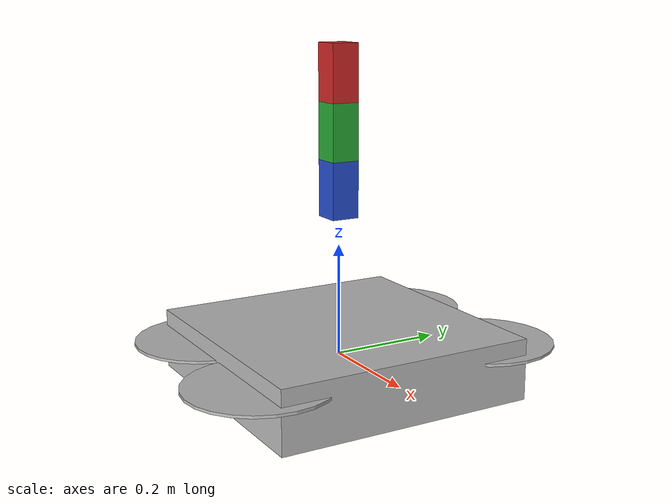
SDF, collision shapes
<sdf version="1.6">
  <model name="iris_with_better_arm">

    <!-- Import the original Iris model -->
    <include>
      <uri>model://iris</uri>  <!-- This imports the original Iris model -->
      <pose>0 0 0 0 0 0</pose>  <!-- Position the Iris at the origin -->
    </include>

    <!-- Arm Link 1 (Base Segment) -->
    <link name="robot_arm_link1">
      <pose>0 0 0.3 0 0 0</pose>  <!-- Position the arm base above the Iris -->
      <inertial>
        <mass>0.1</mass>
        <inertia>
          <ixx>0.01</ixx>
          <iyy>0.01</iyy>
          <izz>0.01</izz>
        </inertia>
      </inertial>
      <collision name="robot_arm_link1_collision">
        <geometry>
          <box>
            <size>0.05 0.05 0.1</size>  <!-- First segment of the arm -->
          </box>
        </geometry>
      </collision>
      <visual name="robot_arm_link1_visual">
        <geometry>
          <box>
            <size>0.05 0.05 0.1</size>  <!-- Visual size same as collision -->
          </box>
        </geometry>
        <material>
          <script>
            <name>Gazebo/Blue</name>  <!-- Blue color for this segment -->
          </script>
        </material>
      </visual>
    </link>

    <!-- Joint 1 (Connecting Iris to Arm) -->
    <joint name="robot_arm_joint1" type="revolute">
      <parent>iris::base_link</parent>  <!-- Attach to the Iris base_link -->
      <child>robot_arm_link1</child>
      <axis>
        <xyz>0 1 0</xyz>  <!-- Rotates around the Y-axis -->
        <limit>
          <lower>-1.57</lower>  <!-- -90 degrees -->
          <upper>1.57</upper>   <!-- 90 degrees -->
        </limit>
      </axis>
    </joint>

    <!-- Arm Link 2 (Middle Segment) -->
    <link name="robot_arm_link2">
      <pose>0 0 0.4 0 0 0</pose>  <!-- Position second segment above the first -->
      <inertial>
        <mass>0.1</mass>
        <inertia>
          <ixx>0.01</ixx>
          <iyy>0.01</iyy>
          <izz>0.01</izz>
        </inertia>
      </inertial>
      <collision name="robot_arm_link2_collision">
        <geometry>
          <box>
            <size>0.05 0.05 0.1</size>  <!-- Second segment of the arm -->
          </box>
        </geometry>
      </collision>
      <visual name="robot_arm_link2_visual">
        <geometry>
          <box>
            <size>0.05 0.05 0.1</size>
          </box>
        </geometry>
        <material>
          <script>
            <name>Gazebo/Green</name>  <!-- Green color for this segment -->
          </script>
        </material>
      </visual>
    </link>

    <!-- Joint 2 (Connecting Arm Segments) -->
    <joint name="robot_arm_joint2" type="revolute">
      <parent>robot_arm_link1</parent>  <!-- Attach to the first segment -->
      <child>robot_arm_link2</child>
      <axis>
        <xyz>1 0 0</xyz>  <!-- Rotates around the X-axis -->
        <limit>
          <lower>-1.57</lower>  <!-- -90 degrees -->
          <upper>1.57</upper>   <!-- 90 degrees -->
        </limit>
      </axis>
    </joint>

    <!-- Arm Link 3 (End Effector) -->
    <link name="robot_arm_link3">
      <pose>0 0 0.5 0 0 0</pose>  <!-- Position the third segment -->
      <inertial>
        <mass>0.05</mass>
        <inertia>
          <ixx>0.005</ixx>
          <iyy>0.005</iyy>
          <izz>0.005</izz>
        </inertia>
      </inertial>
      <collision name="robot_arm_link3_collision">
        <geometry>
          <box>
            <size>0.05 0.05 0.1</size>  <!-- End effector -->
          </box>
        </geometry>
      </collision>
      <visual name="robot_arm_link3_visual">
        <geometry>
          <box>
            <size>0.05 0.05 0.1</size>
          </box>
        </geometry>
        <material>
          <script>
            <name>Gazebo/Red</name>  <!-- Red color for the end effector -->
          </script>
        </material>
      </visual>
    </link>

    <!-- Joint 3 (Connecting Middle Segment to End Effector) -->
    <joint name="robot_arm_joint3" type="revolute">
      <parent>robot_arm_link2</parent>
      <child>robot_arm_link3</child>
      <axis>
        <xyz>0 1 0</xyz>  <!-- Rotates around the Y-axis -->
        <limit>
          <lower>-1.57</lower>  <!-- -90 degrees -->
          <upper>1.57</upper>   <!-- 90 degrees -->
        </limit>
      </axis>
    </joint>

  </model>
</sdf>

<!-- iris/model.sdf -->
<!-- DO NOT EDIT: Generated from iris.sdf.jinja -->
<sdf version='1.6'>
  <model name='iris'>
    <link name='base_link'>
      <pose>0 0 0 0 0 0</pose>
      <inertial>
        <pose>0 0 0 0 0 0</pose>
        <mass>1.5</mass>
        <inertia>
          <ixx>0.029125</ixx>
          <ixy>0</ixy>
          <ixz>0</ixz>
          <iyy>0.029125</iyy>
          <iyz>0</iyz>
          <izz>0.055225</izz>
        </inertia>
      </inertial>
      <collision name='base_link_inertia_collision'>
        <pose>0 0 0 0 0 0</pose>
        <geometry>
          <box>
            <size>0.47 0.47 0.11</size>
          </box>
        </geometry>
        <surface>
          <contact>
            <ode>
              <min_depth>0.001</min_depth>
              <max_vel>0</max_vel>
            </ode>
          </contact>
          <friction>
            <ode/>
          </friction>
        </surface>
      </collision>
      <visual name='base_link_inertia_visual'>
        <pose>0 0 0 0 0 0</pose>
        <geometry>
          <mesh>
            <scale>1 1 1</scale>
            <uri>model://iris/meshes/iris.stl</uri>
          </mesh>
        </geometry>
      </visual>
      <gravity>1</gravity>
      <velocity_decay/>
    </link>
    <link name='/imu_link'>
      <pose>0 0 0 0 0 0</pose>
      <inertial>
        <pose>0 0 0 0 0 0</pose>
        <mass>0.015</mass>
        <inertia>
          <ixx>1e-05</ixx>
          <ixy>0</ixy>
          <ixz>0</ixz>
          <iyy>1e-05</iyy>
          <iyz>0</iyz>
          <izz>1e-05</izz>
        </inertia>
      </inertial>
    </link>
    <joint name='/imu_joint' type='revolute'>
      <child>/imu_link</child>
      <parent>base_link</parent>
      <axis>
        <xyz>1 0 0</xyz>
        <limit>
          <lower>0</lower>
          <upper>0</upper>
          <effort>0</effort>
          <velocity>0</velocity>
        </limit>
        <dynamics>
          <spring_reference>0</spring_reference>
          <spring_stiffness>0</spring_stiffness>
        </dynamics>
        <use_parent_model_frame>1</use_parent_model_frame>
      </axis>
    </joint>
    <link name='rotor_0'>
      <pose>0.13 -0.22 0.023 0 0 0</pose>
      <inertial>
        <pose>0 0 0 0 0 0</pose>
        <mass>0.005</mass>
        <inertia>
          <ixx>9.75e-07</ixx>
          <ixy>0</ixy>
          <ixz>0</ixz>
          <iyy>0.000273104</iyy>
          <iyz>0</iyz>
          <izz>0.000274004</izz>
        </inertia>
      </inertial>
      <collision name='rotor_0_collision'>
        <pose>0 0 0 0 0 0</pose>
        <geometry>
          <cylinder>
            <length>0.005</length>
            <radius>0.128</radius>
          </cylinder>
        </geometry>
        <surface>
          <contact>
            <ode/>
          </contact>
          <friction>
            <ode/>
          </friction>
        </surface>
      </collision>
      <visual name='rotor_0_visual'>
        <pose>0 0 0 0 0 0</pose>
        <geometry>
          <mesh>
            <scale>1 1 1</scale>
            <uri>model://iris/meshes/iris_prop_ccw.dae</uri>
          </mesh>
        </geometry>
      </visual>
      <gravity>1</gravity>
      <velocity_decay/>
    </link>
    <joint name='rotor_0_joint' type='revolute'>
      <child>rotor_0</child>
      <parent>base_link</parent>
      <axis>
        <xyz>0 0 1</xyz>
        <limit>
          <lower>-1e+16</lower>
          <upper>1e+16</upper>
        </limit>
        <dynamics>
          <spring_reference>0</spring_reference>
          <spring_stiffness>0</spring_stiffness>
        </dynamics>
        <use_parent_model_frame>1</use_parent_model_frame>
      </axis>
    </joint>
    <link name='rotor_1'>
      <pose>-0.13 0.2 0.023 0 0 0</pose>
      <inertial>
        <pose>0 0 0 0 0 0</pose>
        <mass>0.005</mass>
        <inertia>
          <ixx>9.75e-07</ixx>
          <ixy>0</ixy>
          <ixz>0</ixz>
          <iyy>0.000273104</iyy>
          <iyz>0</iyz>
          <izz>0.000274004</izz>
        </inertia>
      </inertial>
      <collision name='rotor_1_collision'>
        <pose>0 0 0 0 0 0</pose>
        <geometry>
          <cylinder>
            <length>0.005</length>
            <radius>0.128</radius>
          </cylinder>
        </geometry>
        <surface>
          <contact>
            <ode/>
          </contact>
          <friction>
            <ode/>
          </friction>
        </surface>
      </collision>
      <visual name='rotor_1_visual'>
        <pose>0 0 0 0 0 0</pose>
        <geometry>
          <mesh>
            <scale>1 1 1</scale>
            <uri>model://iris/meshes/iris_prop_ccw.dae</uri>
          </mesh>
        </geometry>
      </visual>
      <gravity>1</gravity>
      <velocity_decay/>
    </link>
    <joint name='rotor_1_joint' type='revolute'>
      <child>rotor_1</child>
      <parent>base_link</parent>
      <axis>
        <xyz>0 0 1</xyz>
        <limit>
          <lower>-1e+16</lower>
          <upper>1e+16</upper>
        </limit>
        <dynamics>
          <spring_reference>0</spring_reference>
          <spring_stiffness>0</spring_stiffness>
        </dynamics>
        <use_parent_model_frame>1</use_parent_model_frame>
      </axis>
    </joint>
    <link name='rotor_2'>
      <pose>0.13 0.22 0.023 0 0 0</pose>
      <inertial>
        <pose>0 0 0 0 0 0</pose>
        <mass>0.005</mass>
        <inertia>
          <ixx>9.75e-07</ixx>
          <ixy>0</ixy>
          <ixz>0</ixz>
          <iyy>0.000273104</iyy>
          <iyz>0</iyz>
          <izz>0.000274004</izz>
        </inertia>
      </inertial>
      <collision name='rotor_2_collision'>
        <pose>0 0 0 0 0 0</pose>
        <geometry>
          <cylinder>
            <length>0.005</length>
            <radius>0.128</radius>
          </cylinder>
        </geometry>
        <surface>
          <contact>
            <ode/>
          </contact>
          <friction>
            <ode/>
          </friction>
        </surface>
      </collision>
      <visual name='rotor_2_visual'>
        <pose>0 0 0 0 0 0</pose>
        <geometry>
          <mesh>
            <scale>1 1 1</scale>
            <uri>model://iris/meshes/iris_prop_cw.dae</uri>
          </mesh>
        </geometry>
      </visual>
      <gravity>1</gravity>
      <velocity_decay/>
    </link>
    <joint name='rotor_2_joint' type='revolute'>
      <child>rotor_2</child>
      <parent>base_link</parent>
      <axis>
        <xyz>0 0 1</xyz>
        <limit>
          <lower>-1e+16</lower>
          <upper>1e+16</upper>
        </limit>
        <dynamics>
          <spring_reference>0</spring_reference>
          <spring_stiffness>0</spring_stiffness>
        </dynamics>
        <use_parent_model_frame>1</use_parent_model_frame>
      </axis>
    </joint>
    <link name='rotor_3'>
      <pose>-0.13 -0.2 0.023 0 0 0</pose>
      <inertial>
        <pose>0 0 0 0 0 0</pose>
        <mass>0.005</mass>
        <inertia>
          <ixx>9.75e-07</ixx>
          <ixy>0</ixy>
          <ixz>0</ixz>
          <iyy>0.000273104</iyy>
          <iyz>0</iyz>
          <izz>0.000274004</izz>
        </inertia>
      </inertial>
      <collision name='rotor_3_collision'>
        <pose>0 0 0 0 0 0</pose>
        <geometry>
          <cylinder>
            <length>0.005</length>
            <radius>0.128</radius>
          </cylinder>
        </geometry>
        <surface>
          <contact>
            <ode/>
          </contact>
          <friction>
            <ode/>
          </friction>
        </surface>
      </collision>
      <visual name='rotor_3_visual'>
        <pose>0 0 0 0 0 0</pose>
        <geometry>
          <mesh>
            <scale>1 1 1</scale>
            <uri>model://iris/meshes/iris_prop_cw.dae</uri>
          </mesh>
        </geometry>
      </visual>
      <gravity>1</gravity>
      <velocity_decay/>
    </link>
    <joint name='rotor_3_joint' type='revolute'>
      <child>rotor_3</child>
      <parent>base_link</parent>
      <axis>
        <xyz>0 0 1</xyz>
        <limit>
          <lower>-1e+16</lower>
          <upper>1e+16</upper>
        </limit>
        <dynamics>
          <spring_reference>0</spring_reference>
          <spring_stiffness>0</spring_stiffness>
        </dynamics>
        <use_parent_model_frame>1</use_parent_model_frame>
      </axis>
    </joint>
    <plugin name='rosbag' filename='libgazebo_multirotor_base_plugin.so'>
      <robotNamespace/>
      <linkName>base_link</linkName>
      <rotorVelocitySlowdownSim>10</rotorVelocitySlowdownSim>
    </plugin>
    <plugin name='front_right_motor_model' filename='libgazebo_motor_model.so'>
      <robotNamespace/>
      <jointName>rotor_0_joint</jointName>
      <linkName>rotor_0</linkName>
      <turningDirection>ccw</turningDirection>
      <timeConstantUp>0.0125</timeConstantUp>
      <timeConstantDown>0.025</timeConstantDown>
      <maxRotVelocity>1100</maxRotVelocity>
      <motorConstant>5.84e-06</motorConstant>
      <momentConstant>0.06</momentConstant>
      <commandSubTopic>/gazebo/command/motor_speed</commandSubTopic>
      <motorNumber>0</motorNumber>
      <rotorDragCoefficient>0.000175</rotorDragCoefficient>
      <rollingMomentCoefficient>1e-06</rollingMomentCoefficient>
      <motorSpeedPubTopic>/motor_speed/0</motorSpeedPubTopic>
      <rotorVelocitySlowdownSim>10</rotorVelocitySlowdownSim>
    </plugin>
    <plugin name='back_left_motor_model' filename='libgazebo_motor_model.so'>
      <robotNamespace/>
      <jointName>rotor_1_joint</jointName>
      <linkName>rotor_1</linkName>
      <turningDirection>ccw</turningDirection>
      <timeConstantUp>0.0125</timeConstantUp>
      <timeConstantDown>0.025</timeConstantDown>
      <maxRotVelocity>1100</maxRotVelocity>
      <motorConstant>5.84e-06</motorConstant>
      <momentConstant>0.06</momentConstant>
      <commandSubTopic>/gazebo/command/motor_speed</commandSubTopic>
      <motorNumber>1</motorNumber>
      <rotorDragCoefficient>0.000175</rotorDragCoefficient>
      <rollingMomentCoefficient>1e-06</rollingMomentCoefficient>
      <motorSpeedPubTopic>/motor_speed/1</motorSpeedPubTopic>
      <rotorVelocitySlowdownSim>10</rotorVelocitySlowdownSim>
    </plugin>
    <plugin name='front_left_motor_model' filename='libgazebo_motor_model.so'>
      <robotNamespace/>
      <jointName>rotor_2_joint</jointName>
      <linkName>rotor_2</linkName>
      <turningDirection>cw</turningDirection>
      <timeConstantUp>0.0125</timeConstantUp>
      <timeConstantDown>0.025</timeConstantDown>
      <maxRotVelocity>1100</maxRotVelocity>
      <motorConstant>5.84e-06</motorConstant>
      <momentConstant>0.06</momentConstant>
      <commandSubTopic>/gazebo/command/motor_speed</commandSubTopic>
      <motorNumber>2</motorNumber>
      <rotorDragCoefficient>0.000175</rotorDragCoefficient>
      <rollingMomentCoefficient>1e-06</rollingMomentCoefficient>
      <motorSpeedPubTopic>/motor_speed/2</motorSpeedPubTopic>
      <rotorVelocitySlowdownSim>10</rotorVelocitySlowdownSim>
    </plugin>
    <plugin name='back_right_motor_model' filename='libgazebo_motor_model.so'>
      <robotNamespace/>
      <jointName>rotor_3_joint</jointName>
      <linkName>rotor_3</linkName>
      <turningDirection>cw</turningDirection>
      <timeConstantUp>0.0125</timeConstantUp>
      <timeConstantDown>0.025</timeConstantDown>
      <maxRotVelocity>1100</maxRotVelocity>
      <motorConstant>5.84e-06</motorConstant>
      <momentConstant>0.06</momentConstant>
      <commandSubTopic>/gazebo/command/motor_speed</commandSubTopic>
      <motorNumber>3</motorNumber>
      <rotorDragCoefficient>0.000175</rotorDragCoefficient>
      <rollingMomentCoefficient>1e-06</rollingMomentCoefficient>
      <motorSpeedPubTopic>/motor_speed/3</motorSpeedPubTopic>
      <rotorVelocitySlowdownSim>10</rotorVelocitySlowdownSim>
    </plugin>
    <model name='gps0'>
      <link name='link'>
        <pose>0 0 0 0 0 0</pose>
        <inertial>
          <pose>0 0 0 0 0 0</pose>
          <mass>0.01</mass>
          <inertia>
            <ixx>2.1733e-06</ixx>
            <ixy>0</ixy>
            <ixz>0</ixz>
            <iyy>2.1733e-06</iyy>
            <iyz>0</iyz>
            <izz>1.8e-07</izz>
          </inertia>
        </inertial>
        <visual name='visual'>
          <geometry>
            <cylinder>
              <radius>0.01</radius>
              <length>0.002</length>
            </cylinder>
          </geometry>
        </visual>
        <sensor name='gps' type='gps'>
          <pose>0 0 0 0 0 0</pose>
          <plugin name='gps_plugin' filename='libgazebo_gps_plugin.so'>
            <robotNamespace/>
            <gpsNoise>1</gpsNoise>
            <gpsXYRandomWalk>2.0</gpsXYRandomWalk>
            <gpsZRandomWalk>4.0</gpsZRandomWalk>
            <gpsXYNoiseDensity>0.0002</gpsXYNoiseDensity>
            <gpsZNoiseDensity>0.0004</gpsZNoiseDensity>
            <gpsVXYNoiseDensity>0.2</gpsVXYNoiseDensity>
            <gpsVZNoiseDensity>0.4</gpsVZNoiseDensity>
          </plugin>
        </sensor>
      </link>
    </model>
    <joint name='gps0_joint' type='fixed'>
      <parent>base_link</parent>
      <child>gps0::link</child>
    </joint>
    <plugin name='groundtruth_plugin' filename='libgazebo_groundtruth_plugin.so'>
      <robotNamespace/>
    </plugin>
    <plugin name='magnetometer_plugin' filename='libgazebo_magnetometer_plugin.so'>
      <robotNamespace/>
      <pubRate>100</pubRate>
      <noiseDensity>0.0004</noiseDensity>
      <randomWalk>6.4e-06</randomWalk>
      <biasCorrelationTime>600</biasCorrelationTime>
      <magTopic>/mag</magTopic>
    </plugin>
    <plugin name='barometer_plugin' filename='libgazebo_barometer_plugin.so'>
      <robotNamespace/>
      <pubRate>50</pubRate>
      <baroTopic>/baro</baroTopic>
      <baroDriftPaPerSec>0</baroDriftPaPerSec>
    </plugin>
    <plugin name='mavlink_interface' filename='libgazebo_mavlink_interface.so'>
      <robotNamespace/>
      <imuSubTopic>/imu</imuSubTopic>
      <magSubTopic>/mag</magSubTopic>
      <baroSubTopic>/baro</baroSubTopic>
      <mavlink_addr>INADDR_ANY</mavlink_addr>
      <mavlink_tcp_port>{{ mavlink_tcp_port }}</mavlink_tcp_port>
      <mavlink_udp_port>{{ mavlink_udp_port }}</mavlink_udp_port>
      <serialEnabled>{{ serial_enabled }}</serialEnabled>
      <serialDevice>{{ serial_device }}</serialDevice>
      <baudRate>{{ serial_baudrate }}</baudRate>
      <qgc_addr>INADDR_ANY</qgc_addr>
      <qgc_udp_port>14550</qgc_udp_port>
      <sdk_addr>INADDR_ANY</sdk_addr>
      <sdk_udp_port>14540</sdk_udp_port>
      <hil_mode>{{ hil_mode }}</hil_mode>
      <hil_state_level>0</hil_state_level>
      <send_vision_estimation>0</send_vision_estimation>
      <send_odometry>1</send_odometry>
      <enable_lockstep>1</enable_lockstep>
      <use_tcp>1</use_tcp>
      <motorSpeedCommandPubTopic>/gazebo/command/motor_speed</motorSpeedCommandPubTopic>
      <control_channels>
        <channel name='rotor1'>
          <input_index>0</input_index>
          <input_offset>0</input_offset>
          <input_scaling>1000</input_scaling>
          <zero_position_disarmed>0</zero_position_disarmed>
          <zero_position_armed>100</zero_position_armed>
          <joint_control_type>velocity</joint_control_type>
        </channel>
        <channel name='rotor2'>
          <input_index>1</input_index>
          <input_offset>0</input_offset>
          <input_scaling>1000</input_scaling>
          <zero_position_disarmed>0</zero_position_disarmed>
          <zero_position_armed>100</zero_position_armed>
          <joint_control_type>velocity</joint_control_type>
        </channel>
        <channel name='rotor3'>
          <input_index>2</input_index>
          <input_offset>0</input_offset>
          <input_scaling>1000</input_scaling>
          <zero_position_disarmed>0</zero_position_disarmed>
          <zero_position_armed>100</zero_position_armed>
          <joint_control_type>velocity</joint_control_type>
        </channel>
        <channel name='rotor4'>
          <input_index>3</input_index>
          <input_offset>0</input_offset>
          <input_scaling>1000</input_scaling>
          <zero_position_disarmed>0</zero_position_disarmed>
          <zero_position_armed>100</zero_position_armed>
          <joint_control_type>velocity</joint_control_type>
        </channel>
        <channel name='rotor5'>
          <input_index>4</input_index>
          <input_offset>1</input_offset>
          <input_scaling>324.6</input_scaling>
          <zero_position_disarmed>0</zero_position_disarmed>
          <zero_position_armed>0</zero_position_armed>
          <joint_control_type>velocity</joint_control_type>
          <joint_control_pid>
            <p>0.1</p>
            <i>0</i>
            <d>0</d>
            <iMax>0.0</iMax>
            <iMin>0.0</iMin>
            <cmdMax>2</cmdMax>
            <cmdMin>-2</cmdMin>
          </joint_control_pid>
          <joint_name>zephyr_delta_wing::propeller_joint</joint_name>
        </channel>
        <channel name='rotor6'>
          <input_index>5</input_index>
          <input_offset>0</input_offset>
          <input_scaling>0.524</input_scaling>
          <zero_position_disarmed>0</zero_position_disarmed>
          <zero_position_armed>0</zero_position_armed>
          <joint_control_type>position</joint_control_type>
          <joint_name>zephyr_delta_wing::flap_left_joint</joint_name>
          <joint_control_pid>
            <p>10.0</p>
            <i>0</i>
            <d>0</d>
            <iMax>0</iMax>
            <iMin>0</iMin>
            <cmdMax>20</cmdMax>
            <cmdMin>-20</cmdMin>
          </joint_control_pid>
        </channel>
        <channel name='rotor7'>
          <input_index>6</input_index>
          <input_offset>0</input_offset>
          <input_scaling>0.524</input_scaling>
          <zero_position_disarmed>0</zero_position_disarmed>
          <zero_position_armed>0</zero_position_armed>
          <joint_control_type>position</joint_control_type>
          <joint_name>zephyr_delta_wing::flap_right_joint</joint_name>
          <joint_control_pid>
            <p>10.0</p>
            <i>0</i>
            <d>0</d>
            <iMax>0</iMax>
            <iMin>0</iMin>
            <cmdMax>20</cmdMax>
            <cmdMin>-20</cmdMin>
          </joint_control_pid>
        </channel>
        <channel name='rotor8'>
          <input_index>7</input_index>
          <input_offset>0</input_offset>
          <input_scaling>0.524</input_scaling>
          <zero_position_disarmed>0</zero_position_disarmed>
          <zero_position_armed>0</zero_position_armed>
          <joint_control_type>position</joint_control_type>
        </channel>
      </control_channels>
    </plugin>
    <static>0</static>
    <plugin name='rotors_gazebo_imu_plugin' filename='libgazebo_imu_plugin.so'>
      <robotNamespace/>
      <linkName>/imu_link</linkName>
      <imuTopic>/imu</imuTopic>
      <gyroscopeNoiseDensity>0.00018665</gyroscopeNoiseDensity>
      <gyroscopeRandomWalk>3.8785e-05</gyroscopeRandomWalk>
      <gyroscopeBiasCorrelationTime>1000.0</gyroscopeBiasCorrelationTime>
      <gyroscopeTurnOnBiasSigma>0.0087</gyroscopeTurnOnBiasSigma>
      <accelerometerNoiseDensity>0.00186</accelerometerNoiseDensity>
      <accelerometerRandomWalk>0.006</accelerometerRandomWalk>
      <accelerometerBiasCorrelationTime>300.0</accelerometerBiasCorrelationTime>
      <accelerometerTurnOnBiasSigma>0.196</accelerometerTurnOnBiasSigma>
    </plugin>
  </model>
</sdf>
